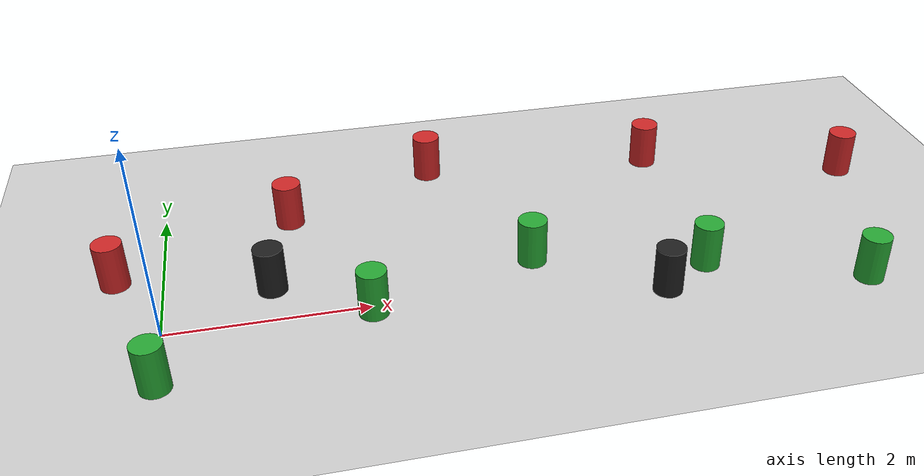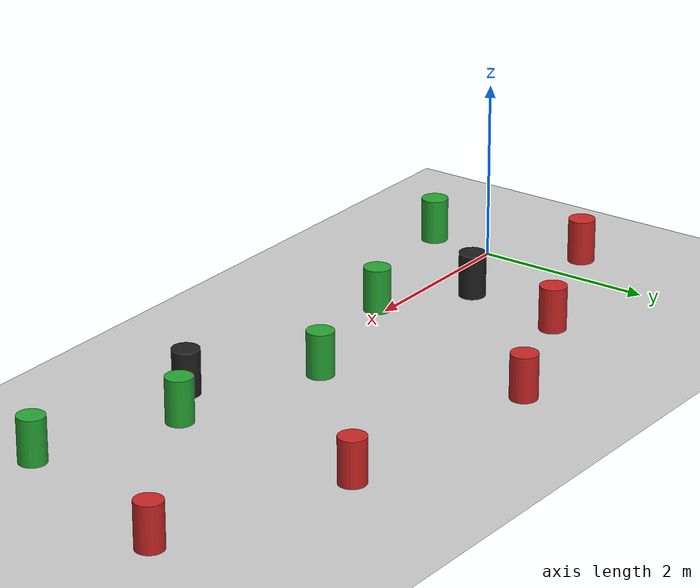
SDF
<sdf version="1.7">
 <world name="default">
  <plugin name="gazebo_ros_state" filename="libgazebo_ros_state.so">
   <ros><namespace>/gazebo</namespace></ros>
   <update_rate>10.0</update_rate>
  </plugin>
  <light name="sun" type="directional">
   <pose>0 0 10 0 -0 0</pose>
   <diffuse>0.8 0.8 0.8 1</diffuse>
   <specular>0.2 0.2 0.2 1</specular>
   <attenuation>
    <range>1000</range>
    <constant>0.9</constant>
    <linear>0.01</linear>
    <quadratic>0.001</quadratic>
   </attenuation>
   <direction>-0.5 0.1 -0.9</direction>
   <spot><inner_angle>0</inner_angle><outer_angle>0</outer_angle><falloff>0</falloff></spot>
  </light>
  <model name="ground_plane">
   <static>1</static>
   <link name="link">
    <collision name="collision">
     <geometry><plane><normal>0 0 1</normal><size>100 100</size></plane></geometry>
     <surface><friction><ode><mu>100</mu><mu2>50</mu2></ode></friction></surface>
    </collision>
    <visual name="visual">
     <cast_shadows>0</cast_shadows>
     <geometry><plane><normal>0 0 1</normal><size>100 100</size></plane></geometry>
     <material>
      <script><uri>file://media/materials/scripts/gazebo.material</uri><name>Gazebo/Grey</name></script>
     </material>
    </visual>
   </link>
  </model>
  <model name="ORANGE_EDGE_BUOY_1">
   <pose>1.31699 1.70684 0.25 0 -0 0</pose>
   <static>1</static>
   <link name="link">
    <visual name="visual">
     <geometry><cylinder><radius>0.15</radius><length>0.5</length></cylinder></geometry>
     <material>
      <script><uri>file://media/materials/scripts/gazebo.material</uri><name>Gazebo/Red</name></script>
     </material>
    </visual>
    <collision name="collision">
     <geometry><cylinder><radius>0.15</radius><length>0.5</length></cylinder></geometry>
    </collision>
   </link>
  </model>
  <model name="ORANGE_EDGE_BUOY_2">
   <pose>2 -0.097413 0.25 0 -0 0</pose>
   <static>1</static>
   <link name="link">
    <visual name="visual">
     <geometry><cylinder><radius>0.15</radius><length>0.5</length></cylinder></geometry>
     <material>
      <script><uri>file://media/materials/scripts/gazebo.material</uri><name>Gazebo/Green</name></script>
     </material>
    </visual>
    <collision name="collision">
     <geometry><cylinder><radius>0.15</radius><length>0.5</length></cylinder></geometry>
    </collision>
   </link>
  </model>
  <gravity>0 0 -9.8</gravity>
  <magnetic_field>6e-06 2.3e-05 -4.2e-05</magnetic_field>
  <atmosphere type="adiabatic"/>
  <physics type="ode">
   <max_step_size>0.001</max_step_size>
   <real_time_factor>1</real_time_factor>
   <real_time_update_rate>1000</real_time_update_rate>
  </physics>
  <scene><ambient>0.4 0.4 0.4 1</ambient><background>0.7 0.7 0.7 1</background><shadows>1</shadows></scene>
  <audio><device>default</device></audio>
  <spherical_coordinates>
   <surface_model>EARTH_WGS84</surface_model>
   <latitude_deg>0</latitude_deg>
   <longitude_deg>0</longitude_deg>
   <elevation>0</elevation>
   <heading_deg>0</heading_deg>
  </spherical_coordinates>
  <model name="ORANGE_EDGE_BUOY_3">
   <pose>2.94647 2.40606 0.25 0 -0 0</pose>
   <static>1</static>
   <link name="link">
    <visual name="visual">
     <geometry><cylinder><radius>0.15</radius><length>0.5</length></cylinder></geometry>
     <material>
      <script><uri>file://media/materials/scripts/gazebo.material</uri><name>Gazebo/Red</name></script>
     </material>
    </visual>
    <collision name="collision">
     <geometry><cylinder><radius>0.15</radius><length>0.5</length></cylinder></geometry>
    </collision>
   </link>
  </model>
  <model name="ORANGE_EDGE_BUOY_4">
   <pose>3.70476 0.406493 0.25 0 -0 0</pose>
   <static>1</static>
   <link name="link">
    <visual name="visual">
     <geometry><cylinder><radius>0.15</radius><length>0.5</length></cylinder></geometry>
     <material>
      <script><uri>file://media/materials/scripts/gazebo.material</uri><name>Gazebo/Green</name></script>
     </material>
    </visual>
    <collision name="collision">
     <geometry><cylinder><radius>0.15</radius><length>0.5</length></cylinder></geometry>
    </collision>
   </link>
  </model>
  <model name="ORANGE_EDGE_BUOY_5">
   <pose>5.5045 2.12514 0.25 0 -0 0</pose>
   <static>1</static>
   <link name="link">
    <visual name="visual">
     <geometry><cylinder><radius>0.15</radius><length>0.5</length></cylinder></geometry>
     <material>
      <script><uri>file://media/materials/scripts/gazebo.material</uri><name>Gazebo/Red</name></script>
     </material>
    </visual>
    <collision name="collision">
     <geometry><cylinder><radius>0.15</radius><length>0.5</length></cylinder></geometry>
    </collision>
   </link>
  </model>
  <model name="ORANGE_EDGE_BUOY_6">
   <pose>5.42385 -0.060263 0.25 0 -0 0</pose>
   <static>1</static>
   <link name="link">
    <visual name="visual">
     <geometry><cylinder><radius>0.15</radius><length>0.5</length></cylinder></geometry>
     <material>
      <script><uri>file://media/materials/scripts/gazebo.material</uri><name>Gazebo/Green</name></script>
     </material>
    </visual>
    <collision name="collision">
     <geometry><cylinder><radius>0.15</radius><length>0.5</length></cylinder></geometry>
    </collision>
   </link>
  </model>
  <model name="ORANGE_EDGE_BUOY_7">
   <pose>-0.466973 0.941078 0.25 0 -0 0</pose>
   <static>1</static>
   <link name="link">
    <visual name="visual">
     <geometry><cylinder><radius>0.15</radius><length>0.5</length></cylinder></geometry>
     <material>
      <script><uri>file://media/materials/scripts/gazebo.material</uri><name>Gazebo/Red</name></script>
     </material>
    </visual>
    <collision name="collision">
     <geometry><cylinder><radius>0.15</radius><length>0.5</length></cylinder></geometry>
    </collision>
   </link>
  </model>
  <model name="ORANGE_EDGE_BUOY_8">
   <pose>-0.022073 -0.74365 0.25 0 -0 0</pose>
   <static>1</static>
   <link name="link">
    <visual name="visual">
     <geometry><cylinder><radius>0.15</radius><length>0.5</length></cylinder></geometry>
     <material>
      <script><uri>file://media/materials/scripts/gazebo.material</uri><name>Gazebo/Green</name></script>
     </material>
    </visual>
    <collision name="collision">
     <geometry><cylinder><radius>0.15</radius><length>0.5</length></cylinder></geometry>
    </collision>
   </link>
  </model>
  <model name="YELLOW_OBSTACLE_BUOY_2">
   <pose>1.06411 0.503774 0.25 0 -0 0</pose>
   <static>1</static>
   <link name="link">
    <visual name="visual">
     <geometry><cylinder><radius>0.15</radius><length>0.5</length></cylinder></geometry>
     <material>
      <script><uri>file://media/materials/scripts/gazebo.material</uri><name>Gazebo/Black</name></script>
     </material>
    </visual>
    <collision name="collision">
     <geometry><cylinder><radius>0.15</radius><length>0.5</length></cylinder></geometry>
    </collision>
   </link>
  </model>
  <model name="YELLOW_OBSTACLE_BUOY_3">
   <pose>4.88805 -0.406855 0.263761 0 -0 0</pose>
   <static>1</static>
   <link name="link">
    <visual name="visual">
     <geometry><cylinder><radius>0.15</radius><length>0.5</length></cylinder></geometry>
     <material>
      <script><uri>file://media/materials/scripts/gazebo.material</uri><name>Gazebo/Black</name></script>
     </material>
    </visual>
    <collision name="collision">
     <geometry><cylinder><radius>0.15</radius><length>0.5</length></cylinder></geometry>
    </collision>
   </link>
  </model>
  <model name="ORANGE_EDGE_BUOY_5_clone">
   <pose>7.67004 1.40275 0.25 0 -0 0</pose>
   <static>1</static>
   <link name="link">
    <visual name="visual">
     <geometry><cylinder><radius>0.15</radius><length>0.5</length></cylinder></geometry>
     <material>
      <script><uri>file://media/materials/scripts/gazebo.material</uri><name>Gazebo/Red</name></script>
     </material>
    </visual>
    <collision name="collision">
     <geometry><cylinder><radius>0.15</radius><length>0.5</length></cylinder></geometry>
    </collision>
   </link>
  </model>
  <model name="ORANGE_EDGE_BUOY_6_clone">
   <pose>6.95629 -0.653614 0.25 0 -0 0</pose>
   <static>1</static>
   <link name="link">
    <visual name="visual">
     <geometry><cylinder><radius>0.15</radius><length>0.5</length></cylinder></geometry>
     <material>
      <script><uri>file://media/materials/scripts/gazebo.material</uri><name>Gazebo/Green</name></script>
     </material>
    </visual>
    <collision name="collision">
     <geometry><cylinder><radius>0.15</radius><length>0.5</length></cylinder></geometry>
    </collision>
   </link>
  </model>
 </world>
</sdf>
